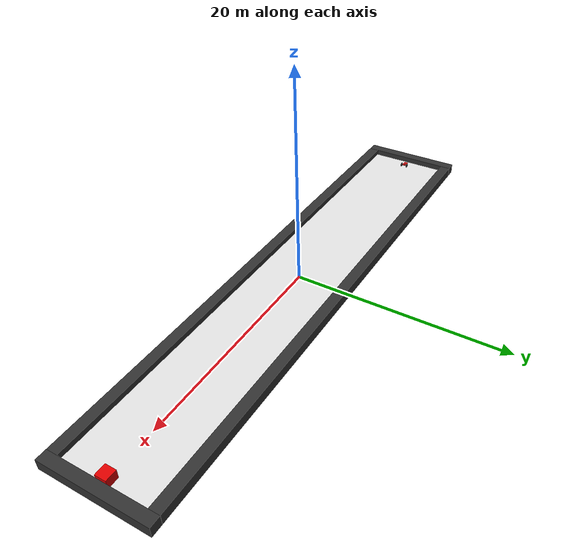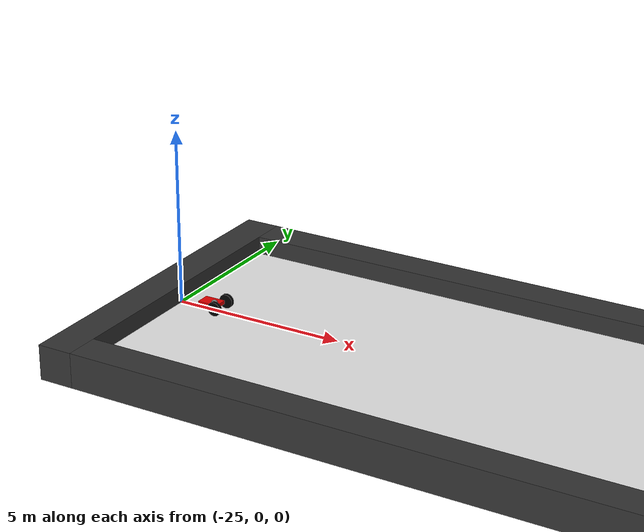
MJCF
<mujoco model="diffdrive">
  <option gravity="0 0 -9.81"/>
  <worldbody>
    <light diffuse=".5 .5 .5" pos="0 0 300" dir="0 0 -1"/>
    <geom type="plane" size="25 5 0.1" rgba=".9 .9 .9 1"/>
    <!--walls-->
    <geom name="wall_1" type="box" size="25 .5 .5" pos="0 4.5 0" rgba=".2 .2 .2 1"/>
    <geom name="wall_2" type="box" size="25 .5 .5" pos="0 -4.5 0" rgba=".2 .2 .2 1"/>
    <geom name="wall_3" type="box" size=".5 5 .5" pos="25.5 0 0" rgba=".2 .2 .2 1"/>
    <geom name="wall_4" type="box" size=".5 5 .5" pos="-25.5 0 0" rgba=".2 .2 .2 1"/>
    <!--differential drive robot-->
    <body name="chassis" pos="-24 0 .2" euler="0 90 0">
      <joint type="free" name="chassis"/>
      <geom type="box" size=".05 .2 .3" rgba=".9 0 0 1"/>
      <site name="marker" pos="0 0 0.1" size=".1"/>
      <body name="right-wheel-body" pos="0 -0.3 0.3" euler="90 0 0">
        <joint name="right-wheel-joint" type="hinge" axis="0 0 -1"/>
        <geom type="cylinder" size=".2 .05" rgba="0 0 0 1"/>
      </body>
      <body name="left-wheel-body" pos="0 0.3 0.3" euler="90 0 0">
        <joint name="left-wheel-joint" type="hinge" axis="0 0 -1"/>
        <geom type="cylinder" size=".2 .05" rgba="0 0 0 1"/>
      </body>
    </body>
    <!--goal line/box-->
    <body>
      <geom name="goal" type="box" size=".5 .5 .5" pos="24.5 0 .3" rgba=".9 0 0 1"/>
    </body>
  </worldbody>
  <actuator>
    <motor name="left-motor" joint="left-wheel-joint" ctrlrange="-5.0 5.0" ctrllimited="true"/>
    <motor name="right-motor" joint="right-wheel-joint" ctrlrange="-5.0 5.0" ctrllimited="true"/>
  </actuator>
</mujoco>
